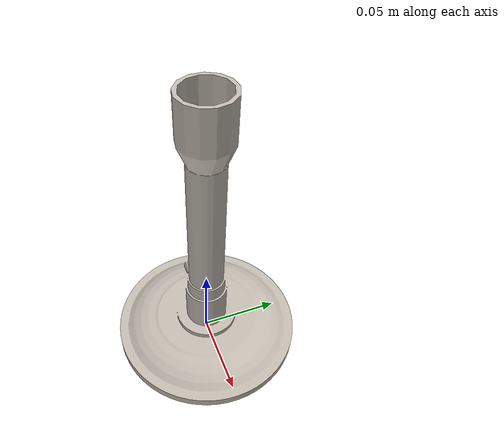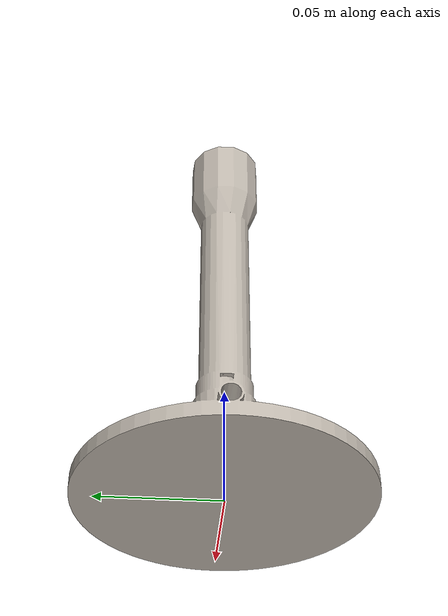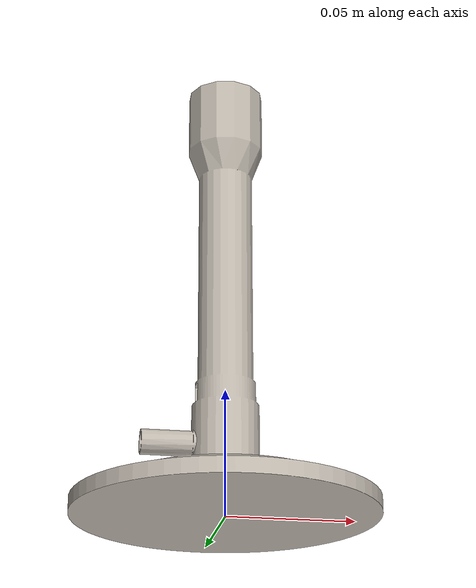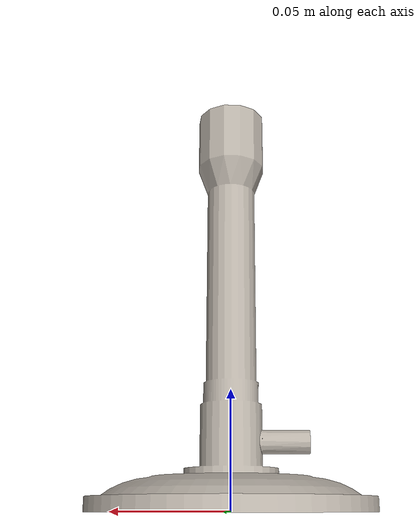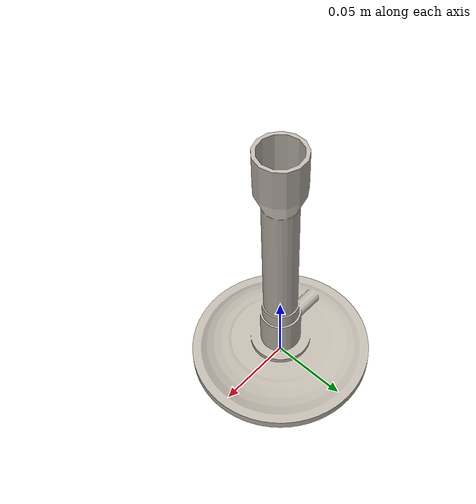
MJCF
<?xml version="1.0" ?>
<mujoco model="7532be8f501d435194e3feec33a3addf">
  <asset>
    <texture type="2d" name="Material_85" file="Material_85.png"/>
    <material name="Material_85" texture="Material_85" specular="0.4000000000000001" shininess="0.001"/>
    <mesh file="7532be8f501d435194e3feec33a3addf/7532be8f501d435194e3feec33a3addf.obj" scale="0.0016458285554968464 0.0016458285554968464 0.0016458285554968464"/>
    <mesh file="7532be8f501d435194e3feec33a3addf/7532be8f501d435194e3feec33a3addf_collision_0.obj" scale="0.0016458285554968464 0.0016458285554968464 0.0016458285554968464"/>
    <mesh file="7532be8f501d435194e3feec33a3addf/7532be8f501d435194e3feec33a3addf_collision_1.obj" scale="0.0016458285554968464 0.0016458285554968464 0.0016458285554968464"/>
    <mesh file="7532be8f501d435194e3feec33a3addf/7532be8f501d435194e3feec33a3addf_collision_2.obj" scale="0.0016458285554968464 0.0016458285554968464 0.0016458285554968464"/>
    <mesh file="7532be8f501d435194e3feec33a3addf/7532be8f501d435194e3feec33a3addf_collision_3.obj" scale="0.0016458285554968464 0.0016458285554968464 0.0016458285554968464"/>
    <mesh file="7532be8f501d435194e3feec33a3addf/7532be8f501d435194e3feec33a3addf_collision_4.obj" scale="0.0016458285554968464 0.0016458285554968464 0.0016458285554968464"/>
    <mesh file="7532be8f501d435194e3feec33a3addf/7532be8f501d435194e3feec33a3addf_collision_5.obj" scale="0.0016458285554968464 0.0016458285554968464 0.0016458285554968464"/>
    <mesh file="7532be8f501d435194e3feec33a3addf/7532be8f501d435194e3feec33a3addf_collision_6.obj" scale="0.0016458285554968464 0.0016458285554968464 0.0016458285554968464"/>
    <mesh file="7532be8f501d435194e3feec33a3addf/7532be8f501d435194e3feec33a3addf_collision_7.obj" scale="0.0016458285554968464 0.0016458285554968464 0.0016458285554968464"/>
    <mesh file="7532be8f501d435194e3feec33a3addf/7532be8f501d435194e3feec33a3addf_collision_8.obj" scale="0.0016458285554968464 0.0016458285554968464 0.0016458285554968464"/>
    <mesh file="7532be8f501d435194e3feec33a3addf/7532be8f501d435194e3feec33a3addf_collision_9.obj" scale="0.0016458285554968464 0.0016458285554968464 0.0016458285554968464"/>
    <mesh file="7532be8f501d435194e3feec33a3addf/7532be8f501d435194e3feec33a3addf_collision_10.obj" scale="0.0016458285554968464 0.0016458285554968464 0.0016458285554968464"/>
    <mesh file="7532be8f501d435194e3feec33a3addf/7532be8f501d435194e3feec33a3addf_collision_11.obj" scale="0.0016458285554968464 0.0016458285554968464 0.0016458285554968464"/>
    <mesh file="7532be8f501d435194e3feec33a3addf/7532be8f501d435194e3feec33a3addf_collision_12.obj" scale="0.0016458285554968464 0.0016458285554968464 0.0016458285554968464"/>
    <mesh file="7532be8f501d435194e3feec33a3addf/7532be8f501d435194e3feec33a3addf_collision_13.obj" scale="0.0016458285554968464 0.0016458285554968464 0.0016458285554968464"/>
    <mesh file="7532be8f501d435194e3feec33a3addf/7532be8f501d435194e3feec33a3addf_collision_14.obj" scale="0.0016458285554968464 0.0016458285554968464 0.0016458285554968464"/>
    <mesh file="7532be8f501d435194e3feec33a3addf/7532be8f501d435194e3feec33a3addf_collision_15.obj" scale="0.0016458285554968464 0.0016458285554968464 0.0016458285554968464"/>
    <mesh file="7532be8f501d435194e3feec33a3addf/7532be8f501d435194e3feec33a3addf_collision_16.obj" scale="0.0016458285554968464 0.0016458285554968464 0.0016458285554968464"/>
    <mesh file="7532be8f501d435194e3feec33a3addf/7532be8f501d435194e3feec33a3addf_collision_17.obj" scale="0.0016458285554968464 0.0016458285554968464 0.0016458285554968464"/>
    <mesh file="7532be8f501d435194e3feec33a3addf/7532be8f501d435194e3feec33a3addf_collision_18.obj" scale="0.0016458285554968464 0.0016458285554968464 0.0016458285554968464"/>
    <mesh file="7532be8f501d435194e3feec33a3addf/7532be8f501d435194e3feec33a3addf_collision_19.obj" scale="0.0016458285554968464 0.0016458285554968464 0.0016458285554968464"/>
    <mesh file="7532be8f501d435194e3feec33a3addf/7532be8f501d435194e3feec33a3addf_collision_20.obj" scale="0.0016458285554968464 0.0016458285554968464 0.0016458285554968464"/>
    <mesh file="7532be8f501d435194e3feec33a3addf/7532be8f501d435194e3feec33a3addf_collision_21.obj" scale="0.0016458285554968464 0.0016458285554968464 0.0016458285554968464"/>
    <mesh file="7532be8f501d435194e3feec33a3addf/7532be8f501d435194e3feec33a3addf_collision_22.obj" scale="0.0016458285554968464 0.0016458285554968464 0.0016458285554968464"/>
    <mesh file="7532be8f501d435194e3feec33a3addf/7532be8f501d435194e3feec33a3addf_collision_23.obj" scale="0.0016458285554968464 0.0016458285554968464 0.0016458285554968464"/>
    <mesh file="7532be8f501d435194e3feec33a3addf/7532be8f501d435194e3feec33a3addf_collision_24.obj" scale="0.0016458285554968464 0.0016458285554968464 0.0016458285554968464"/>
    <mesh file="7532be8f501d435194e3feec33a3addf/7532be8f501d435194e3feec33a3addf_collision_25.obj" scale="0.0016458285554968464 0.0016458285554968464 0.0016458285554968464"/>
    <mesh file="7532be8f501d435194e3feec33a3addf/7532be8f501d435194e3feec33a3addf_collision_26.obj" scale="0.0016458285554968464 0.0016458285554968464 0.0016458285554968464"/>
    <mesh file="7532be8f501d435194e3feec33a3addf/7532be8f501d435194e3feec33a3addf_collision_27.obj" scale="0.0016458285554968464 0.0016458285554968464 0.0016458285554968464"/>
    <mesh file="7532be8f501d435194e3feec33a3addf/7532be8f501d435194e3feec33a3addf_collision_28.obj" scale="0.0016458285554968464 0.0016458285554968464 0.0016458285554968464"/>
    <mesh file="7532be8f501d435194e3feec33a3addf/7532be8f501d435194e3feec33a3addf_collision_29.obj" scale="0.0016458285554968464 0.0016458285554968464 0.0016458285554968464"/>
    <mesh file="7532be8f501d435194e3feec33a3addf/7532be8f501d435194e3feec33a3addf_collision_30.obj" scale="0.0016458285554968464 0.0016458285554968464 0.0016458285554968464"/>
    <mesh file="7532be8f501d435194e3feec33a3addf/7532be8f501d435194e3feec33a3addf_collision_31.obj" scale="0.0016458285554968464 0.0016458285554968464 0.0016458285554968464"/>
    <mesh file="7532be8f501d435194e3feec33a3addf/7532be8f501d435194e3feec33a3addf_collision_32.obj" scale="0.0016458285554968464 0.0016458285554968464 0.0016458285554968464"/>
  </asset>
  <worldbody>
    <body name="7532be8f501d435194e3feec33a3addf">
      <inertial pos="0 0 0.0900" mass="0.02" diaginertia="0.000077 0.000077 0.000046"/>
      <geom material="Material_85" mesh="7532be8f501d435194e3feec33a3addf" class="visual"/>
      <geom mesh="7532be8f501d435194e3feec33a3addf_collision_0" rgba="0.26501808472547583 0.5577162925683503 0.6286603664820737 1" class="collision"/>
      <geom mesh="7532be8f501d435194e3feec33a3addf_collision_1" rgba="0.7757656922935998 0.1868273839386747 0.18197453888393134 1" class="collision"/>
      <geom mesh="7532be8f501d435194e3feec33a3addf_collision_2" rgba="0.5457700158273726 0.7716731470786063 0.5698779609529712 1" class="collision"/>
      <geom mesh="7532be8f501d435194e3feec33a3addf_collision_3" rgba="0.3991530481012211 0.9662613827298484 0.9317312330795318 1" class="collision"/>
      <geom mesh="7532be8f501d435194e3feec33a3addf_collision_4" rgba="0.1038010021620418 0.7648167859810711 0.8218385030381656 1" class="collision"/>
      <geom mesh="7532be8f501d435194e3feec33a3addf_collision_5" rgba="0.5393753425120377 0.970137816927799 0.058032473712021915 1" class="collision"/>
      <geom mesh="7532be8f501d435194e3feec33a3addf_collision_6" rgba="0.04006539492807981 0.6396279033685845 0.8246692246839192 1" class="collision"/>
      <geom mesh="7532be8f501d435194e3feec33a3addf_collision_7" rgba="0.53956903486449 0.05579263156974368 0.1641923440751113 1" class="collision"/>
      <geom mesh="7532be8f501d435194e3feec33a3addf_collision_8" rgba="0.35299210920268154 0.12494512850764461 0.8668896793964371 1" class="collision"/>
      <geom mesh="7532be8f501d435194e3feec33a3addf_collision_9" rgba="0.5004260576461879 0.8440999712146001 0.6270466607872527 1" class="collision"/>
      <geom mesh="7532be8f501d435194e3feec33a3addf_collision_10" rgba="0.7669647522306343 0.15210405116095382 0.5126623106217282 1" class="collision"/>
      <geom mesh="7532be8f501d435194e3feec33a3addf_collision_11" rgba="0.8388188551375106 0.8839546917140514 0.44463073496660555 1" class="collision"/>
      <geom mesh="7532be8f501d435194e3feec33a3addf_collision_12" rgba="0.8230774157314337 0.13155751918370862 0.6557777353427978 1" class="collision"/>
      <geom mesh="7532be8f501d435194e3feec33a3addf_collision_13" rgba="0.17673803232357155 0.9026971350413616 0.1707194419558603 1" class="collision"/>
      <geom mesh="7532be8f501d435194e3feec33a3addf_collision_14" rgba="0.3582480181692985 0.8216716901475466 0.2563750167986144 1" class="collision"/>
      <geom mesh="7532be8f501d435194e3feec33a3addf_collision_15" rgba="0.9956212654778235 0.258654921122934 0.550214349163147 1" class="collision"/>
      <geom mesh="7532be8f501d435194e3feec33a3addf_collision_16" rgba="0.0386677396092614 0.4492876402838961 0.2909942704041598 1" class="collision"/>
      <geom mesh="7532be8f501d435194e3feec33a3addf_collision_17" rgba="0.556718175754219 0.7361589746091116 0.9944854687799917 1" class="collision"/>
      <geom mesh="7532be8f501d435194e3feec33a3addf_collision_18" rgba="0.3237748818329267 0.5673828630016167 0.5724001867513715 1" class="collision"/>
      <geom mesh="7532be8f501d435194e3feec33a3addf_collision_19" rgba="0.059593314641782746 0.4921349970286597 0.21575984227339207 1" class="collision"/>
      <geom mesh="7532be8f501d435194e3feec33a3addf_collision_20" rgba="0.9168892698099504 0.645035066564862 0.942510894169555 1" class="collision"/>
      <geom mesh="7532be8f501d435194e3feec33a3addf_collision_21" rgba="0.05144799975936265 0.9257793876998287 0.7146844005743492 1" class="collision"/>
      <geom mesh="7532be8f501d435194e3feec33a3addf_collision_22" rgba="0.9658378704911225 0.4954751306265345 0.4203152643907997 1" class="collision"/>
      <geom mesh="7532be8f501d435194e3feec33a3addf_collision_23" rgba="0.10140692731810197 0.9664656057604485 0.4150832013959306 1" class="collision"/>
      <geom mesh="7532be8f501d435194e3feec33a3addf_collision_24" rgba="0.4263017566804006 0.5005026702473624 0.5699424521188905 1" class="collision"/>
      <geom mesh="7532be8f501d435194e3feec33a3addf_collision_25" rgba="0.20946191480731247 0.5712749204579816 0.3343777368139639 1" class="collision"/>
      <geom mesh="7532be8f501d435194e3feec33a3addf_collision_26" rgba="0.5661482746993513 0.47484397392512134 0.33746778697982516 1" class="collision"/>
      <geom mesh="7532be8f501d435194e3feec33a3addf_collision_27" rgba="0.38766618639255324 0.9227970202271876 0.6029149404421776 1" class="collision"/>
      <geom mesh="7532be8f501d435194e3feec33a3addf_collision_28" rgba="0.5542158886158027 0.8265065504484143 0.04419534918032775 1" class="collision"/>
      <geom mesh="7532be8f501d435194e3feec33a3addf_collision_29" rgba="0.14189255632547537 0.9191361458443698 0.35774079847604967 1" class="collision"/>
      <geom mesh="7532be8f501d435194e3feec33a3addf_collision_30" rgba="0.5935925852999739 0.0207980647087036 0.46311133907279656 1" class="collision"/>
      <geom mesh="7532be8f501d435194e3feec33a3addf_collision_31" rgba="0.9209716375947546 0.06171869609260938 0.775216430432813 1" class="collision"/>
      <geom mesh="7532be8f501d435194e3feec33a3addf_collision_32" rgba="0.8056192500704572 0.3776961455756406 0.04299856011558889 1" class="collision"/>
      <site class="grasppoint" pos="0 0 0.1440"/>
      <site class="grasppoint" pos="0 0 0.1575"/>
      <site class="grasppoint" pos="0 0 0.1710"/>
    </body>
  </worldbody>
  <compiler boundmass="0.015" boundinertia="1e-05" angle="radian"/>
  <default>
    <default class="visual">
      <geom group="2" type="mesh" contype="0" conaffinity="0" density="50"/>
    </default>
    <default class="collision">
      <geom group="3" type="mesh" density="50" friction="1.5 0.1 0.1" solimp="0.9 0.95 0.001" solref="0.02 1"/>
    </default>
    <default class="grasppoint">
      <site type="sphere" size="0.005" group="4" rgba="0 0 1 1"/>
    </default>
  </default>
</mujoco>
